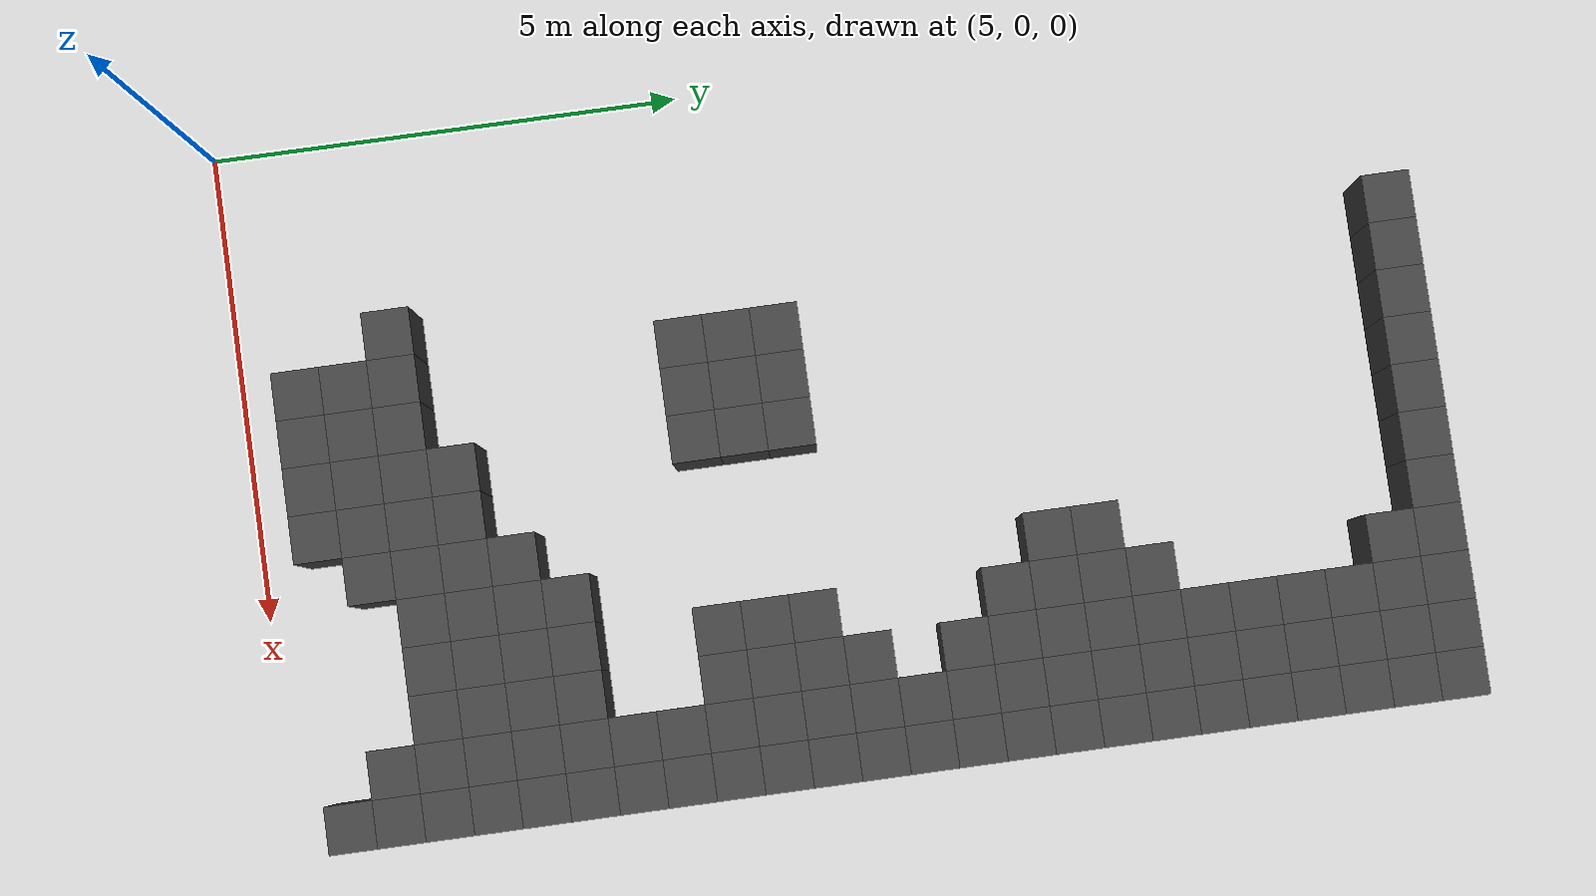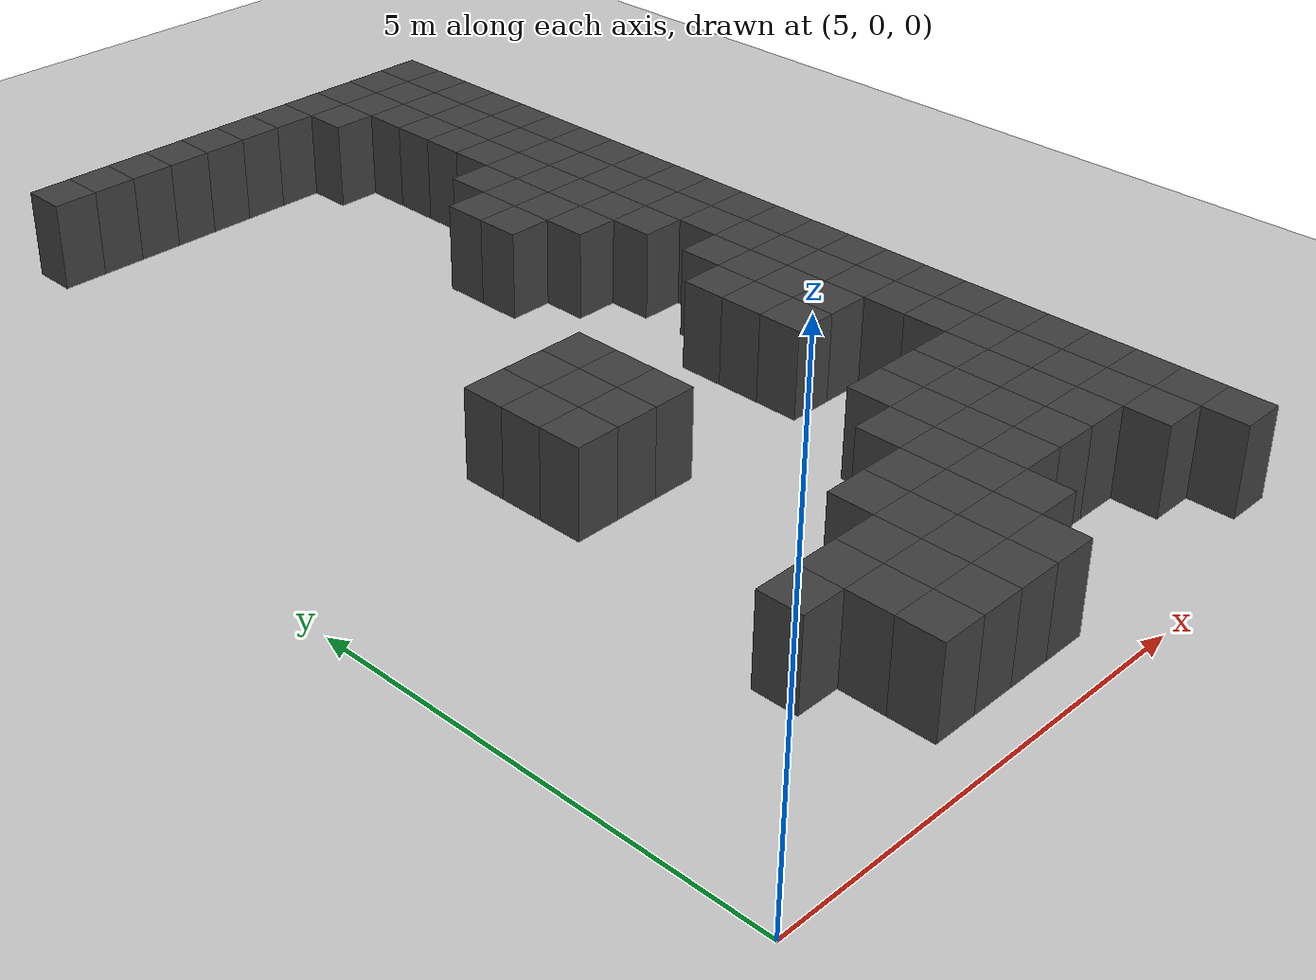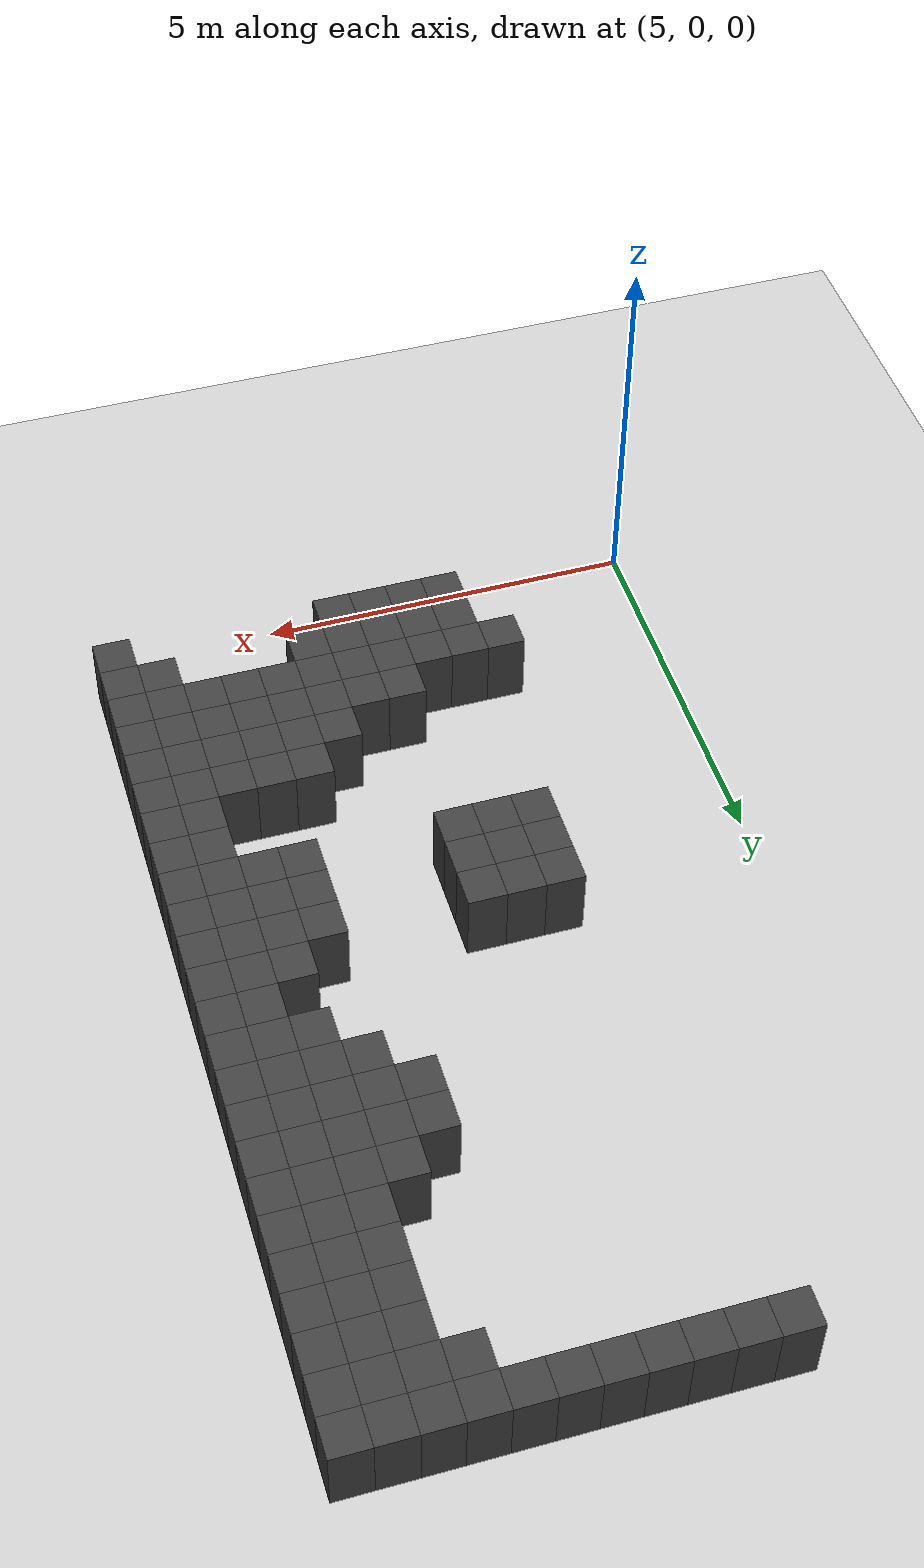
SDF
<sdf version="1.7">
 <world name="map_7372">
  <model name="ground_plane">
   <static>true</static>
   <link name="link">
    <collision name="collision">
     <geometry><plane><normal>0 0 1</normal><size>200 200</size></plane></geometry>
    </collision>
    <visual name="visual">
     <geometry><plane><normal>0 0 1</normal><size>200 200</size></plane></geometry>
     <material><ambient>0.8 0.8 0.8 1</ambient><diffuse>0.8 0.8 0.8 1</diffuse></material>
    </visual>
   </link>
  </model>
  <model name="maze_environment">
   <static>true</static>
   <link name="wall_39">
    <pose>7.250 12.250 0.500 0 0 0</pose>
    <collision name="col"><geometry><box><size>0.5 0.5 1.0</size></box></geometry></collision>
    <visual name="vis">
     <geometry><box><size>0.5 0.5 1.0</size></box></geometry>
     <material><ambient>0.15 0.15 0.15 1</ambient><diffuse>0.25 0.25 0.25 1</diffuse></material>
    </visual>
   </link>
   <link name="wall_40">
    <pose>7.750 12.250 0.500 0 0 0</pose>
    <collision name="col"><geometry><box><size>0.5 0.5 1.0</size></box></geometry></collision>
    <visual name="vis">
     <geometry><box><size>0.5 0.5 1.0</size></box></geometry>
     <material><ambient>0.15 0.15 0.15 1</ambient><diffuse>0.25 0.25 0.25 1</diffuse></material>
    </visual>
   </link>
   <link name="wall_41">
    <pose>8.250 12.250 0.500 0 0 0</pose>
    <collision name="col"><geometry><box><size>0.5 0.5 1.0</size></box></geometry></collision>
    <visual name="vis">
     <geometry><box><size>0.5 0.5 1.0</size></box></geometry>
     <material><ambient>0.15 0.15 0.15 1</ambient><diffuse>0.25 0.25 0.25 1</diffuse></material>
    </visual>
   </link>
   <link name="wall_42">
    <pose>8.750 12.250 0.500 0 0 0</pose>
    <collision name="col"><geometry><box><size>0.5 0.5 1.0</size></box></geometry></collision>
    <visual name="vis">
     <geometry><box><size>0.5 0.5 1.0</size></box></geometry>
     <material><ambient>0.15 0.15 0.15 1</ambient><diffuse>0.25 0.25 0.25 1</diffuse></material>
    </visual>
   </link>
   <link name="wall_43">
    <pose>9.250 12.250 0.500 0 0 0</pose>
    <collision name="col"><geometry><box><size>0.5 0.5 1.0</size></box></geometry></collision>
    <visual name="vis">
     <geometry><box><size>0.5 0.5 1.0</size></box></geometry>
     <material><ambient>0.15 0.15 0.15 1</ambient><diffuse>0.25 0.25 0.25 1</diffuse></material>
    </visual>
   </link>
   <link name="wall_44">
    <pose>9.750 12.250 0.500 0 0 0</pose>
    <collision name="col"><geometry><box><size>0.5 0.5 1.0</size></box></geometry></collision>
    <visual name="vis">
     <geometry><box><size>0.5 0.5 1.0</size></box></geometry>
     <material><ambient>0.15 0.15 0.15 1</ambient><diffuse>0.25 0.25 0.25 1</diffuse></material>
    </visual>
   </link>
   <link name="wall_45">
    <pose>10.250 12.250 0.500 0 0 0</pose>
    <collision name="col"><geometry><box><size>0.5 0.5 1.0</size></box></geometry></collision>
    <visual name="vis">
     <geometry><box><size>0.5 0.5 1.0</size></box></geometry>
     <material><ambient>0.15 0.15 0.15 1</ambient><diffuse>0.25 0.25 0.25 1</diffuse></material>
    </visual>
   </link>
   <link name="wall_46">
    <pose>10.750 12.250 0.500 0 0 0</pose>
    <collision name="col"><geometry><box><size>0.5 0.5 1.0</size></box></geometry></collision>
    <visual name="vis">
     <geometry><box><size>0.5 0.5 1.0</size></box></geometry>
     <material><ambient>0.15 0.15 0.15 1</ambient><diffuse>0.25 0.25 0.25 1</diffuse></material>
    </visual>
   </link>
   <link name="wall_47">
    <pose>11.250 12.250 0.500 0 0 0</pose>
    <collision name="col"><geometry><box><size>0.5 0.5 1.0</size></box></geometry></collision>
    <visual name="vis">
     <geometry><box><size>0.5 0.5 1.0</size></box></geometry>
     <material><ambient>0.15 0.15 0.15 1</ambient><diffuse>0.25 0.25 0.25 1</diffuse></material>
    </visual>
   </link>
   <link name="wall_48">
    <pose>11.750 12.250 0.500 0 0 0</pose>
    <collision name="col"><geometry><box><size>0.5 0.5 1.0</size></box></geometry></collision>
    <visual name="vis">
     <geometry><box><size>0.5 0.5 1.0</size></box></geometry>
     <material><ambient>0.15 0.15 0.15 1</ambient><diffuse>0.25 0.25 0.25 1</diffuse></material>
    </visual>
   </link>
   <link name="wall_49">
    <pose>12.250 12.250 0.500 0 0 0</pose>
    <collision name="col"><geometry><box><size>0.5 0.5 1.0</size></box></geometry></collision>
    <visual name="vis">
     <geometry><box><size>0.5 0.5 1.0</size></box></geometry>
     <material><ambient>0.15 0.15 0.15 1</ambient><diffuse>0.25 0.25 0.25 1</diffuse></material>
    </visual>
   </link>
   <link name="wall_77">
    <pose>10.750 11.750 0.500 0 0 0</pose>
    <collision name="col"><geometry><box><size>0.5 0.5 1.0</size></box></geometry></collision>
    <visual name="vis">
     <geometry><box><size>0.5 0.5 1.0</size></box></geometry>
     <material><ambient>0.15 0.15 0.15 1</ambient><diffuse>0.25 0.25 0.25 1</diffuse></material>
    </visual>
   </link>
   <link name="wall_78">
    <pose>11.250 11.750 0.500 0 0 0</pose>
    <collision name="col"><geometry><box><size>0.5 0.5 1.0</size></box></geometry></collision>
    <visual name="vis">
     <geometry><box><size>0.5 0.5 1.0</size></box></geometry>
     <material><ambient>0.15 0.15 0.15 1</ambient><diffuse>0.25 0.25 0.25 1</diffuse></material>
    </visual>
   </link>
   <link name="wall_79">
    <pose>11.750 11.750 0.500 0 0 0</pose>
    <collision name="col"><geometry><box><size>0.5 0.5 1.0</size></box></geometry></collision>
    <visual name="vis">
     <geometry><box><size>0.5 0.5 1.0</size></box></geometry>
     <material><ambient>0.15 0.15 0.15 1</ambient><diffuse>0.25 0.25 0.25 1</diffuse></material>
    </visual>
   </link>
   <link name="wall_80">
    <pose>12.250 11.750 0.500 0 0 0</pose>
    <collision name="col"><geometry><box><size>0.5 0.5 1.0</size></box></geometry></collision>
    <visual name="vis">
     <geometry><box><size>0.5 0.5 1.0</size></box></geometry>
     <material><ambient>0.15 0.15 0.15 1</ambient><diffuse>0.25 0.25 0.25 1</diffuse></material>
    </visual>
   </link>
   <link name="wall_98">
    <pose>11.250 11.250 0.500 0 0 0</pose>
    <collision name="col"><geometry><box><size>0.5 0.5 1.0</size></box></geometry></collision>
    <visual name="vis">
     <geometry><box><size>0.5 0.5 1.0</size></box></geometry>
     <material><ambient>0.15 0.15 0.15 1</ambient><diffuse>0.25 0.25 0.25 1</diffuse></material>
    </visual>
   </link>
   <link name="wall_99">
    <pose>11.750 11.250 0.500 0 0 0</pose>
    <collision name="col"><geometry><box><size>0.5 0.5 1.0</size></box></geometry></collision>
    <visual name="vis">
     <geometry><box><size>0.5 0.5 1.0</size></box></geometry>
     <material><ambient>0.15 0.15 0.15 1</ambient><diffuse>0.25 0.25 0.25 1</diffuse></material>
    </visual>
   </link>
   <link name="wall_100">
    <pose>12.250 11.250 0.500 0 0 0</pose>
    <collision name="col"><geometry><box><size>0.5 0.5 1.0</size></box></geometry></collision>
    <visual name="vis">
     <geometry><box><size>0.5 0.5 1.0</size></box></geometry>
     <material><ambient>0.15 0.15 0.15 1</ambient><diffuse>0.25 0.25 0.25 1</diffuse></material>
    </visual>
   </link>
   <link name="wall_110">
    <pose>11.250 10.750 0.500 0 0 0</pose>
    <collision name="col"><geometry><box><size>0.5 0.5 1.0</size></box></geometry></collision>
    <visual name="vis">
     <geometry><box><size>0.5 0.5 1.0</size></box></geometry>
     <material><ambient>0.15 0.15 0.15 1</ambient><diffuse>0.25 0.25 0.25 1</diffuse></material>
    </visual>
   </link>
   <link name="wall_111">
    <pose>11.750 10.750 0.500 0 0 0</pose>
    <collision name="col"><geometry><box><size>0.5 0.5 1.0</size></box></geometry></collision>
    <visual name="vis">
     <geometry><box><size>0.5 0.5 1.0</size></box></geometry>
     <material><ambient>0.15 0.15 0.15 1</ambient><diffuse>0.25 0.25 0.25 1</diffuse></material>
    </visual>
   </link>
   <link name="wall_112">
    <pose>12.250 10.750 0.500 0 0 0</pose>
    <collision name="col"><geometry><box><size>0.5 0.5 1.0</size></box></geometry></collision>
    <visual name="vis">
     <geometry><box><size>0.5 0.5 1.0</size></box></geometry>
     <material><ambient>0.15 0.15 0.15 1</ambient><diffuse>0.25 0.25 0.25 1</diffuse></material>
    </visual>
   </link>
   <link name="wall_120">
    <pose>11.250 10.250 0.500 0 0 0</pose>
    <collision name="col"><geometry><box><size>0.5 0.5 1.0</size></box></geometry></collision>
    <visual name="vis">
     <geometry><box><size>0.5 0.5 1.0</size></box></geometry>
     <material><ambient>0.15 0.15 0.15 1</ambient><diffuse>0.25 0.25 0.25 1</diffuse></material>
    </visual>
   </link>
   <link name="wall_121">
    <pose>11.750 10.250 0.500 0 0 0</pose>
    <collision name="col"><geometry><box><size>0.5 0.5 1.0</size></box></geometry></collision>
    <visual name="vis">
     <geometry><box><size>0.5 0.5 1.0</size></box></geometry>
     <material><ambient>0.15 0.15 0.15 1</ambient><diffuse>0.25 0.25 0.25 1</diffuse></material>
    </visual>
   </link>
   <link name="wall_122">
    <pose>12.250 10.250 0.500 0 0 0</pose>
    <collision name="col"><geometry><box><size>0.5 0.5 1.0</size></box></geometry></collision>
    <visual name="vis">
     <geometry><box><size>0.5 0.5 1.0</size></box></geometry>
     <material><ambient>0.15 0.15 0.15 1</ambient><diffuse>0.25 0.25 0.25 1</diffuse></material>
    </visual>
   </link>
   <link name="wall_134">
    <pose>11.250 9.750 0.500 0 0 0</pose>
    <collision name="col"><geometry><box><size>0.5 0.5 1.0</size></box></geometry></collision>
    <visual name="vis">
     <geometry><box><size>0.5 0.5 1.0</size></box></geometry>
     <material><ambient>0.15 0.15 0.15 1</ambient><diffuse>0.25 0.25 0.25 1</diffuse></material>
    </visual>
   </link>
   <link name="wall_135">
    <pose>11.750 9.750 0.500 0 0 0</pose>
    <collision name="col"><geometry><box><size>0.5 0.5 1.0</size></box></geometry></collision>
    <visual name="vis">
     <geometry><box><size>0.5 0.5 1.0</size></box></geometry>
     <material><ambient>0.15 0.15 0.15 1</ambient><diffuse>0.25 0.25 0.25 1</diffuse></material>
    </visual>
   </link>
   <link name="wall_136">
    <pose>12.250 9.750 0.500 0 0 0</pose>
    <collision name="col"><geometry><box><size>0.5 0.5 1.0</size></box></geometry></collision>
    <visual name="vis">
     <geometry><box><size>0.5 0.5 1.0</size></box></geometry>
     <material><ambient>0.15 0.15 0.15 1</ambient><diffuse>0.25 0.25 0.25 1</diffuse></material>
    </visual>
   </link>
   <link name="wall_146">
    <pose>10.750 9.250 0.500 0 0 0</pose>
    <collision name="col"><geometry><box><size>0.5 0.5 1.0</size></box></geometry></collision>
    <visual name="vis">
     <geometry><box><size>0.5 0.5 1.0</size></box></geometry>
     <material><ambient>0.15 0.15 0.15 1</ambient><diffuse>0.25 0.25 0.25 1</diffuse></material>
    </visual>
   </link>
   <link name="wall_147">
    <pose>11.250 9.250 0.500 0 0 0</pose>
    <collision name="col"><geometry><box><size>0.5 0.5 1.0</size></box></geometry></collision>
    <visual name="vis">
     <geometry><box><size>0.5 0.5 1.0</size></box></geometry>
     <material><ambient>0.15 0.15 0.15 1</ambient><diffuse>0.25 0.25 0.25 1</diffuse></material>
    </visual>
   </link>
   <link name="wall_148">
    <pose>11.750 9.250 0.500 0 0 0</pose>
    <collision name="col"><geometry><box><size>0.5 0.5 1.0</size></box></geometry></collision>
    <visual name="vis">
     <geometry><box><size>0.5 0.5 1.0</size></box></geometry>
     <material><ambient>0.15 0.15 0.15 1</ambient><diffuse>0.25 0.25 0.25 1</diffuse></material>
    </visual>
   </link>
   <link name="wall_149">
    <pose>12.250 9.250 0.500 0 0 0</pose>
    <collision name="col"><geometry><box><size>0.5 0.5 1.0</size></box></geometry></collision>
    <visual name="vis">
     <geometry><box><size>0.5 0.5 1.0</size></box></geometry>
     <material><ambient>0.15 0.15 0.15 1</ambient><diffuse>0.25 0.25 0.25 1</diffuse></material>
    </visual>
   </link>
   <link name="wall_157">
    <pose>10.250 8.750 0.500 0 0 0</pose>
    <collision name="col"><geometry><box><size>0.5 0.5 1.0</size></box></geometry></collision>
    <visual name="vis">
     <geometry><box><size>0.5 0.5 1.0</size></box></geometry>
     <material><ambient>0.15 0.15 0.15 1</ambient><diffuse>0.25 0.25 0.25 1</diffuse></material>
    </visual>
   </link>
   <link name="wall_158">
    <pose>10.750 8.750 0.500 0 0 0</pose>
    <collision name="col"><geometry><box><size>0.5 0.5 1.0</size></box></geometry></collision>
    <visual name="vis">
     <geometry><box><size>0.5 0.5 1.0</size></box></geometry>
     <material><ambient>0.15 0.15 0.15 1</ambient><diffuse>0.25 0.25 0.25 1</diffuse></material>
    </visual>
   </link>
   <link name="wall_159">
    <pose>11.250 8.750 0.500 0 0 0</pose>
    <collision name="col"><geometry><box><size>0.5 0.5 1.0</size></box></geometry></collision>
    <visual name="vis">
     <geometry><box><size>0.5 0.5 1.0</size></box></geometry>
     <material><ambient>0.15 0.15 0.15 1</ambient><diffuse>0.25 0.25 0.25 1</diffuse></material>
    </visual>
   </link>
   <link name="wall_160">
    <pose>11.750 8.750 0.500 0 0 0</pose>
    <collision name="col"><geometry><box><size>0.5 0.5 1.0</size></box></geometry></collision>
    <visual name="vis">
     <geometry><box><size>0.5 0.5 1.0</size></box></geometry>
     <material><ambient>0.15 0.15 0.15 1</ambient><diffuse>0.25 0.25 0.25 1</diffuse></material>
    </visual>
   </link>
   <link name="wall_161">
    <pose>12.250 8.750 0.500 0 0 0</pose>
    <collision name="col"><geometry><box><size>0.5 0.5 1.0</size></box></geometry></collision>
    <visual name="vis">
     <geometry><box><size>0.5 0.5 1.0</size></box></geometry>
     <material><ambient>0.15 0.15 0.15 1</ambient><diffuse>0.25 0.25 0.25 1</diffuse></material>
    </visual>
   </link>
   <link name="wall_167">
    <pose>10.250 8.250 0.500 0 0 0</pose>
    <collision name="col"><geometry><box><size>0.5 0.5 1.0</size></box></geometry></collision>
    <visual name="vis">
     <geometry><box><size>0.5 0.5 1.0</size></box></geometry>
     <material><ambient>0.15 0.15 0.15 1</ambient><diffuse>0.25 0.25 0.25 1</diffuse></material>
    </visual>
   </link>
   <link name="wall_168">
    <pose>10.750 8.250 0.500 0 0 0</pose>
    <collision name="col"><geometry><box><size>0.5 0.5 1.0</size></box></geometry></collision>
    <visual name="vis">
     <geometry><box><size>0.5 0.5 1.0</size></box></geometry>
     <material><ambient>0.15 0.15 0.15 1</ambient><diffuse>0.25 0.25 0.25 1</diffuse></material>
    </visual>
   </link>
   <link name="wall_169">
    <pose>11.250 8.250 0.500 0 0 0</pose>
    <collision name="col"><geometry><box><size>0.5 0.5 1.0</size></box></geometry></collision>
    <visual name="vis">
     <geometry><box><size>0.5 0.5 1.0</size></box></geometry>
     <material><ambient>0.15 0.15 0.15 1</ambient><diffuse>0.25 0.25 0.25 1</diffuse></material>
    </visual>
   </link>
   <link name="wall_170">
    <pose>11.750 8.250 0.500 0 0 0</pose>
    <collision name="col"><geometry><box><size>0.5 0.5 1.0</size></box></geometry></collision>
    <visual name="vis">
     <geometry><box><size>0.5 0.5 1.0</size></box></geometry>
     <material><ambient>0.15 0.15 0.15 1</ambient><diffuse>0.25 0.25 0.25 1</diffuse></material>
    </visual>
   </link>
   <link name="wall_171">
    <pose>12.250 8.250 0.500 0 0 0</pose>
    <collision name="col"><geometry><box><size>0.5 0.5 1.0</size></box></geometry></collision>
    <visual name="vis">
     <geometry><box><size>0.5 0.5 1.0</size></box></geometry>
     <material><ambient>0.15 0.15 0.15 1</ambient><diffuse>0.25 0.25 0.25 1</diffuse></material>
    </visual>
   </link>
   <link name="wall_179">
    <pose>10.750 7.750 0.500 0 0 0</pose>
    <collision name="col"><geometry><box><size>0.5 0.5 1.0</size></box></geometry></collision>
    <visual name="vis">
     <geometry><box><size>0.5 0.5 1.0</size></box></geometry>
     <material><ambient>0.15 0.15 0.15 1</ambient><diffuse>0.25 0.25 0.25 1</diffuse></material>
    </visual>
   </link>
   <link name="wall_180">
    <pose>11.250 7.750 0.500 0 0 0</pose>
    <collision name="col"><geometry><box><size>0.5 0.5 1.0</size></box></geometry></collision>
    <visual name="vis">
     <geometry><box><size>0.5 0.5 1.0</size></box></geometry>
     <material><ambient>0.15 0.15 0.15 1</ambient><diffuse>0.25 0.25 0.25 1</diffuse></material>
    </visual>
   </link>
   <link name="wall_181">
    <pose>11.750 7.750 0.500 0 0 0</pose>
    <collision name="col"><geometry><box><size>0.5 0.5 1.0</size></box></geometry></collision>
    <visual name="vis">
     <geometry><box><size>0.5 0.5 1.0</size></box></geometry>
     <material><ambient>0.15 0.15 0.15 1</ambient><diffuse>0.25 0.25 0.25 1</diffuse></material>
    </visual>
   </link>
   <link name="wall_182">
    <pose>12.250 7.750 0.500 0 0 0</pose>
    <collision name="col"><geometry><box><size>0.5 0.5 1.0</size></box></geometry></collision>
    <visual name="vis">
     <geometry><box><size>0.5 0.5 1.0</size></box></geometry>
     <material><ambient>0.15 0.15 0.15 1</ambient><diffuse>0.25 0.25 0.25 1</diffuse></material>
    </visual>
   </link>
   <link name="wall_191">
    <pose>11.250 7.250 0.500 0 0 0</pose>
    <collision name="col"><geometry><box><size>0.5 0.5 1.0</size></box></geometry></collision>
    <visual name="vis">
     <geometry><box><size>0.5 0.5 1.0</size></box></geometry>
     <material><ambient>0.15 0.15 0.15 1</ambient><diffuse>0.25 0.25 0.25 1</diffuse></material>
    </visual>
   </link>
   <link name="wall_192">
    <pose>11.750 7.250 0.500 0 0 0</pose>
    <collision name="col"><geometry><box><size>0.5 0.5 1.0</size></box></geometry></collision>
    <visual name="vis">
     <geometry><box><size>0.5 0.5 1.0</size></box></geometry>
     <material><ambient>0.15 0.15 0.15 1</ambient><diffuse>0.25 0.25 0.25 1</diffuse></material>
    </visual>
   </link>
   <link name="wall_193">
    <pose>12.250 7.250 0.500 0 0 0</pose>
    <collision name="col"><geometry><box><size>0.5 0.5 1.0</size></box></geometry></collision>
    <visual name="vis">
     <geometry><box><size>0.5 0.5 1.0</size></box></geometry>
     <material><ambient>0.15 0.15 0.15 1</ambient><diffuse>0.25 0.25 0.25 1</diffuse></material>
    </visual>
   </link>
   <link name="wall_200">
    <pose>11.750 6.750 0.500 0 0 0</pose>
    <collision name="col"><geometry><box><size>0.5 0.5 1.0</size></box></geometry></collision>
    <visual name="vis">
     <geometry><box><size>0.5 0.5 1.0</size></box></geometry>
     <material><ambient>0.15 0.15 0.15 1</ambient><diffuse>0.25 0.25 0.25 1</diffuse></material>
    </visual>
   </link>
   <link name="wall_201">
    <pose>12.250 6.750 0.500 0 0 0</pose>
    <collision name="col"><geometry><box><size>0.5 0.5 1.0</size></box></geometry></collision>
    <visual name="vis">
     <geometry><box><size>0.5 0.5 1.0</size></box></geometry>
     <material><ambient>0.15 0.15 0.15 1</ambient><diffuse>0.25 0.25 0.25 1</diffuse></material>
    </visual>
   </link>
   <link name="wall_210">
    <pose>11.250 6.250 0.500 0 0 0</pose>
    <collision name="col"><geometry><box><size>0.5 0.5 1.0</size></box></geometry></collision>
    <visual name="vis">
     <geometry><box><size>0.5 0.5 1.0</size></box></geometry>
     <material><ambient>0.15 0.15 0.15 1</ambient><diffuse>0.25 0.25 0.25 1</diffuse></material>
    </visual>
   </link>
   <link name="wall_211">
    <pose>11.750 6.250 0.500 0 0 0</pose>
    <collision name="col"><geometry><box><size>0.5 0.5 1.0</size></box></geometry></collision>
    <visual name="vis">
     <geometry><box><size>0.5 0.5 1.0</size></box></geometry>
     <material><ambient>0.15 0.15 0.15 1</ambient><diffuse>0.25 0.25 0.25 1</diffuse></material>
    </visual>
   </link>
   <link name="wall_212">
    <pose>12.250 6.250 0.500 0 0 0</pose>
    <collision name="col"><geometry><box><size>0.5 0.5 1.0</size></box></geometry></collision>
    <visual name="vis">
     <geometry><box><size>0.5 0.5 1.0</size></box></geometry>
     <material><ambient>0.15 0.15 0.15 1</ambient><diffuse>0.25 0.25 0.25 1</diffuse></material>
    </visual>
   </link>
   <link name="wall_223">
    <pose>7.750 5.750 0.500 0 0 0</pose>
    <collision name="col"><geometry><box><size>0.5 0.5 1.0</size></box></geometry></collision>
    <visual name="vis">
     <geometry><box><size>0.5 0.5 1.0</size></box></geometry>
     <material><ambient>0.15 0.15 0.15 1</ambient><diffuse>0.25 0.25 0.25 1</diffuse></material>
    </visual>
   </link>
   <link name="wall_224">
    <pose>8.250 5.750 0.500 0 0 0</pose>
    <collision name="col"><geometry><box><size>0.5 0.5 1.0</size></box></geometry></collision>
    <visual name="vis">
     <geometry><box><size>0.5 0.5 1.0</size></box></geometry>
     <material><ambient>0.15 0.15 0.15 1</ambient><diffuse>0.25 0.25 0.25 1</diffuse></material>
    </visual>
   </link>
   <link name="wall_225">
    <pose>8.750 5.750 0.500 0 0 0</pose>
    <collision name="col"><geometry><box><size>0.5 0.5 1.0</size></box></geometry></collision>
    <visual name="vis">
     <geometry><box><size>0.5 0.5 1.0</size></box></geometry>
     <material><ambient>0.15 0.15 0.15 1</ambient><diffuse>0.25 0.25 0.25 1</diffuse></material>
    </visual>
   </link>
   <link name="wall_226">
    <pose>10.750 5.750 0.500 0 0 0</pose>
    <collision name="col"><geometry><box><size>0.5 0.5 1.0</size></box></geometry></collision>
    <visual name="vis">
     <geometry><box><size>0.5 0.5 1.0</size></box></geometry>
     <material><ambient>0.15 0.15 0.15 1</ambient><diffuse>0.25 0.25 0.25 1</diffuse></material>
    </visual>
   </link>
   <link name="wall_227">
    <pose>11.250 5.750 0.500 0 0 0</pose>
    <collision name="col"><geometry><box><size>0.5 0.5 1.0</size></box></geometry></collision>
    <visual name="vis">
     <geometry><box><size>0.5 0.5 1.0</size></box></geometry>
     <material><ambient>0.15 0.15 0.15 1</ambient><diffuse>0.25 0.25 0.25 1</diffuse></material>
    </visual>
   </link>
   <link name="wall_228">
    <pose>11.750 5.750 0.500 0 0 0</pose>
    <collision name="col"><geometry><box><size>0.5 0.5 1.0</size></box></geometry></collision>
    <visual name="vis">
     <geometry><box><size>0.5 0.5 1.0</size></box></geometry>
     <material><ambient>0.15 0.15 0.15 1</ambient><diffuse>0.25 0.25 0.25 1</diffuse></material>
    </visual>
   </link>
   <link name="wall_229">
    <pose>12.250 5.750 0.500 0 0 0</pose>
    <collision name="col"><geometry><box><size>0.5 0.5 1.0</size></box></geometry></collision>
    <visual name="vis">
     <geometry><box><size>0.5 0.5 1.0</size></box></geometry>
     <material><ambient>0.15 0.15 0.15 1</ambient><diffuse>0.25 0.25 0.25 1</diffuse></material>
    </visual>
   </link>
   <link name="wall_244">
    <pose>7.750 5.250 0.500 0 0 0</pose>
    <collision name="col"><geometry><box><size>0.5 0.5 1.0</size></box></geometry></collision>
    <visual name="vis">
     <geometry><box><size>0.5 0.5 1.0</size></box></geometry>
     <material><ambient>0.15 0.15 0.15 1</ambient><diffuse>0.25 0.25 0.25 1</diffuse></material>
    </visual>
   </link>
   <link name="wall_245">
    <pose>8.250 5.250 0.500 0 0 0</pose>
    <collision name="col"><geometry><box><size>0.5 0.5 1.0</size></box></geometry></collision>
    <visual name="vis">
     <geometry><box><size>0.5 0.5 1.0</size></box></geometry>
     <material><ambient>0.15 0.15 0.15 1</ambient><diffuse>0.25 0.25 0.25 1</diffuse></material>
    </visual>
   </link>
   <link name="wall_246">
    <pose>8.750 5.250 0.500 0 0 0</pose>
    <collision name="col"><geometry><box><size>0.5 0.5 1.0</size></box></geometry></collision>
    <visual name="vis">
     <geometry><box><size>0.5 0.5 1.0</size></box></geometry>
     <material><ambient>0.15 0.15 0.15 1</ambient><diffuse>0.25 0.25 0.25 1</diffuse></material>
    </visual>
   </link>
   <link name="wall_247">
    <pose>10.750 5.250 0.500 0 0 0</pose>
    <collision name="col"><geometry><box><size>0.5 0.5 1.0</size></box></geometry></collision>
    <visual name="vis">
     <geometry><box><size>0.5 0.5 1.0</size></box></geometry>
     <material><ambient>0.15 0.15 0.15 1</ambient><diffuse>0.25 0.25 0.25 1</diffuse></material>
    </visual>
   </link>
   <link name="wall_248">
    <pose>11.250 5.250 0.500 0 0 0</pose>
    <collision name="col"><geometry><box><size>0.5 0.5 1.0</size></box></geometry></collision>
    <visual name="vis">
     <geometry><box><size>0.5 0.5 1.0</size></box></geometry>
     <material><ambient>0.15 0.15 0.15 1</ambient><diffuse>0.25 0.25 0.25 1</diffuse></material>
    </visual>
   </link>
   <link name="wall_249">
    <pose>11.750 5.250 0.500 0 0 0</pose>
    <collision name="col"><geometry><box><size>0.5 0.5 1.0</size></box></geometry></collision>
    <visual name="vis">
     <geometry><box><size>0.5 0.5 1.0</size></box></geometry>
     <material><ambient>0.15 0.15 0.15 1</ambient><diffuse>0.25 0.25 0.25 1</diffuse></material>
    </visual>
   </link>
   <link name="wall_250">
    <pose>12.250 5.250 0.500 0 0 0</pose>
    <collision name="col"><geometry><box><size>0.5 0.5 1.0</size></box></geometry></collision>
    <visual name="vis">
     <geometry><box><size>0.5 0.5 1.0</size></box></geometry>
     <material><ambient>0.15 0.15 0.15 1</ambient><diffuse>0.25 0.25 0.25 1</diffuse></material>
    </visual>
   </link>
   <link name="wall_265">
    <pose>7.750 4.750 0.500 0 0 0</pose>
    <collision name="col"><geometry><box><size>0.5 0.5 1.0</size></box></geometry></collision>
    <visual name="vis">
     <geometry><box><size>0.5 0.5 1.0</size></box></geometry>
     <material><ambient>0.15 0.15 0.15 1</ambient><diffuse>0.25 0.25 0.25 1</diffuse></material>
    </visual>
   </link>
   <link name="wall_266">
    <pose>8.250 4.750 0.500 0 0 0</pose>
    <collision name="col"><geometry><box><size>0.5 0.5 1.0</size></box></geometry></collision>
    <visual name="vis">
     <geometry><box><size>0.5 0.5 1.0</size></box></geometry>
     <material><ambient>0.15 0.15 0.15 1</ambient><diffuse>0.25 0.25 0.25 1</diffuse></material>
    </visual>
   </link>
   <link name="wall_267">
    <pose>8.750 4.750 0.500 0 0 0</pose>
    <collision name="col"><geometry><box><size>0.5 0.5 1.0</size></box></geometry></collision>
    <visual name="vis">
     <geometry><box><size>0.5 0.5 1.0</size></box></geometry>
     <material><ambient>0.15 0.15 0.15 1</ambient><diffuse>0.25 0.25 0.25 1</diffuse></material>
    </visual>
   </link>
   <link name="wall_268">
    <pose>10.750 4.750 0.500 0 0 0</pose>
    <collision name="col"><geometry><box><size>0.5 0.5 1.0</size></box></geometry></collision>
    <visual name="vis">
     <geometry><box><size>0.5 0.5 1.0</size></box></geometry>
     <material><ambient>0.15 0.15 0.15 1</ambient><diffuse>0.25 0.25 0.25 1</diffuse></material>
    </visual>
   </link>
   <link name="wall_269">
    <pose>11.250 4.750 0.500 0 0 0</pose>
    <collision name="col"><geometry><box><size>0.5 0.5 1.0</size></box></geometry></collision>
    <visual name="vis">
     <geometry><box><size>0.5 0.5 1.0</size></box></geometry>
     <material><ambient>0.15 0.15 0.15 1</ambient><diffuse>0.25 0.25 0.25 1</diffuse></material>
    </visual>
   </link>
   <link name="wall_270">
    <pose>11.750 4.750 0.500 0 0 0</pose>
    <collision name="col"><geometry><box><size>0.5 0.5 1.0</size></box></geometry></collision>
    <visual name="vis">
     <geometry><box><size>0.5 0.5 1.0</size></box></geometry>
     <material><ambient>0.15 0.15 0.15 1</ambient><diffuse>0.25 0.25 0.25 1</diffuse></material>
    </visual>
   </link>
   <link name="wall_271">
    <pose>12.250 4.750 0.500 0 0 0</pose>
    <collision name="col"><geometry><box><size>0.5 0.5 1.0</size></box></geometry></collision>
    <visual name="vis">
     <geometry><box><size>0.5 0.5 1.0</size></box></geometry>
     <material><ambient>0.15 0.15 0.15 1</ambient><diffuse>0.25 0.25 0.25 1</diffuse></material>
    </visual>
   </link>
   <link name="wall_288">
    <pose>11.750 4.250 0.500 0 0 0</pose>
    <collision name="col"><geometry><box><size>0.5 0.5 1.0</size></box></geometry></collision>
    <visual name="vis">
     <geometry><box><size>0.5 0.5 1.0</size></box></geometry>
     <material><ambient>0.15 0.15 0.15 1</ambient><diffuse>0.25 0.25 0.25 1</diffuse></material>
    </visual>
   </link>
   <link name="wall_289">
    <pose>12.250 4.250 0.500 0 0 0</pose>
    <collision name="col"><geometry><box><size>0.5 0.5 1.0</size></box></geometry></collision>
    <visual name="vis">
     <geometry><box><size>0.5 0.5 1.0</size></box></geometry>
     <material><ambient>0.15 0.15 0.15 1</ambient><diffuse>0.25 0.25 0.25 1</diffuse></material>
    </visual>
   </link>
   <link name="wall_302">
    <pose>11.750 3.750 0.500 0 0 0</pose>
    <collision name="col"><geometry><box><size>0.5 0.5 1.0</size></box></geometry></collision>
    <visual name="vis">
     <geometry><box><size>0.5 0.5 1.0</size></box></geometry>
     <material><ambient>0.15 0.15 0.15 1</ambient><diffuse>0.25 0.25 0.25 1</diffuse></material>
    </visual>
   </link>
   <link name="wall_303">
    <pose>12.250 3.750 0.500 0 0 0</pose>
    <collision name="col"><geometry><box><size>0.5 0.5 1.0</size></box></geometry></collision>
    <visual name="vis">
     <geometry><box><size>0.5 0.5 1.0</size></box></geometry>
     <material><ambient>0.15 0.15 0.15 1</ambient><diffuse>0.25 0.25 0.25 1</diffuse></material>
    </visual>
   </link>
   <link name="wall_314">
    <pose>10.250 3.250 0.500 0 0 0</pose>
    <collision name="col"><geometry><box><size>0.5 0.5 1.0</size></box></geometry></collision>
    <visual name="vis">
     <geometry><box><size>0.5 0.5 1.0</size></box></geometry>
     <material><ambient>0.15 0.15 0.15 1</ambient><diffuse>0.25 0.25 0.25 1</diffuse></material>
    </visual>
   </link>
   <link name="wall_315">
    <pose>10.750 3.250 0.500 0 0 0</pose>
    <collision name="col"><geometry><box><size>0.5 0.5 1.0</size></box></geometry></collision>
    <visual name="vis">
     <geometry><box><size>0.5 0.5 1.0</size></box></geometry>
     <material><ambient>0.15 0.15 0.15 1</ambient><diffuse>0.25 0.25 0.25 1</diffuse></material>
    </visual>
   </link>
   <link name="wall_316">
    <pose>11.250 3.250 0.500 0 0 0</pose>
    <collision name="col"><geometry><box><size>0.5 0.5 1.0</size></box></geometry></collision>
    <visual name="vis">
     <geometry><box><size>0.5 0.5 1.0</size></box></geometry>
     <material><ambient>0.15 0.15 0.15 1</ambient><diffuse>0.25 0.25 0.25 1</diffuse></material>
    </visual>
   </link>
   <link name="wall_317">
    <pose>11.750 3.250 0.500 0 0 0</pose>
    <collision name="col"><geometry><box><size>0.5 0.5 1.0</size></box></geometry></collision>
    <visual name="vis">
     <geometry><box><size>0.5 0.5 1.0</size></box></geometry>
     <material><ambient>0.15 0.15 0.15 1</ambient><diffuse>0.25 0.25 0.25 1</diffuse></material>
    </visual>
   </link>
   <link name="wall_318">
    <pose>12.250 3.250 0.500 0 0 0</pose>
    <collision name="col"><geometry><box><size>0.5 0.5 1.0</size></box></geometry></collision>
    <visual name="vis">
     <geometry><box><size>0.5 0.5 1.0</size></box></geometry>
     <material><ambient>0.15 0.15 0.15 1</ambient><diffuse>0.25 0.25 0.25 1</diffuse></material>
    </visual>
   </link>
   <link name="wall_328">
    <pose>9.750 2.750 0.500 0 0 0</pose>
    <collision name="col"><geometry><box><size>0.5 0.5 1.0</size></box></geometry></collision>
    <visual name="vis">
     <geometry><box><size>0.5 0.5 1.0</size></box></geometry>
     <material><ambient>0.15 0.15 0.15 1</ambient><diffuse>0.25 0.25 0.25 1</diffuse></material>
    </visual>
   </link>
   <link name="wall_329">
    <pose>10.250 2.750 0.500 0 0 0</pose>
    <collision name="col"><geometry><box><size>0.5 0.5 1.0</size></box></geometry></collision>
    <visual name="vis">
     <geometry><box><size>0.5 0.5 1.0</size></box></geometry>
     <material><ambient>0.15 0.15 0.15 1</ambient><diffuse>0.25 0.25 0.25 1</diffuse></material>
    </visual>
   </link>
   <link name="wall_330">
    <pose>10.750 2.750 0.500 0 0 0</pose>
    <collision name="col"><geometry><box><size>0.5 0.5 1.0</size></box></geometry></collision>
    <visual name="vis">
     <geometry><box><size>0.5 0.5 1.0</size></box></geometry>
     <material><ambient>0.15 0.15 0.15 1</ambient><diffuse>0.25 0.25 0.25 1</diffuse></material>
    </visual>
   </link>
   <link name="wall_331">
    <pose>11.250 2.750 0.500 0 0 0</pose>
    <collision name="col"><geometry><box><size>0.5 0.5 1.0</size></box></geometry></collision>
    <visual name="vis">
     <geometry><box><size>0.5 0.5 1.0</size></box></geometry>
     <material><ambient>0.15 0.15 0.15 1</ambient><diffuse>0.25 0.25 0.25 1</diffuse></material>
    </visual>
   </link>
   <link name="wall_332">
    <pose>11.750 2.750 0.500 0 0 0</pose>
    <collision name="col"><geometry><box><size>0.5 0.5 1.0</size></box></geometry></collision>
    <visual name="vis">
     <geometry><box><size>0.5 0.5 1.0</size></box></geometry>
     <material><ambient>0.15 0.15 0.15 1</ambient><diffuse>0.25 0.25 0.25 1</diffuse></material>
    </visual>
   </link>
   <link name="wall_333">
    <pose>12.250 2.750 0.500 0 0 0</pose>
    <collision name="col"><geometry><box><size>0.5 0.5 1.0</size></box></geometry></collision>
    <visual name="vis">
     <geometry><box><size>0.5 0.5 1.0</size></box></geometry>
     <material><ambient>0.15 0.15 0.15 1</ambient><diffuse>0.25 0.25 0.25 1</diffuse></material>
    </visual>
   </link>
   <link name="wall_344">
    <pose>8.750 2.250 0.500 0 0 0</pose>
    <collision name="col"><geometry><box><size>0.5 0.5 1.0</size></box></geometry></collision>
    <visual name="vis">
     <geometry><box><size>0.5 0.5 1.0</size></box></geometry>
     <material><ambient>0.15 0.15 0.15 1</ambient><diffuse>0.25 0.25 0.25 1</diffuse></material>
    </visual>
   </link>
   <link name="wall_345">
    <pose>9.250 2.250 0.500 0 0 0</pose>
    <collision name="col"><geometry><box><size>0.5 0.5 1.0</size></box></geometry></collision>
    <visual name="vis">
     <geometry><box><size>0.5 0.5 1.0</size></box></geometry>
     <material><ambient>0.15 0.15 0.15 1</ambient><diffuse>0.25 0.25 0.25 1</diffuse></material>
    </visual>
   </link>
   <link name="wall_346">
    <pose>9.750 2.250 0.500 0 0 0</pose>
    <collision name="col"><geometry><box><size>0.5 0.5 1.0</size></box></geometry></collision>
    <visual name="vis">
     <geometry><box><size>0.5 0.5 1.0</size></box></geometry>
     <material><ambient>0.15 0.15 0.15 1</ambient><diffuse>0.25 0.25 0.25 1</diffuse></material>
    </visual>
   </link>
   <link name="wall_347">
    <pose>10.250 2.250 0.500 0 0 0</pose>
    <collision name="col"><geometry><box><size>0.5 0.5 1.0</size></box></geometry></collision>
    <visual name="vis">
     <geometry><box><size>0.5 0.5 1.0</size></box></geometry>
     <material><ambient>0.15 0.15 0.15 1</ambient><diffuse>0.25 0.25 0.25 1</diffuse></material>
    </visual>
   </link>
   <link name="wall_348">
    <pose>10.750 2.250 0.500 0 0 0</pose>
    <collision name="col"><geometry><box><size>0.5 0.5 1.0</size></box></geometry></collision>
    <visual name="vis">
     <geometry><box><size>0.5 0.5 1.0</size></box></geometry>
     <material><ambient>0.15 0.15 0.15 1</ambient><diffuse>0.25 0.25 0.25 1</diffuse></material>
    </visual>
   </link>
   <link name="wall_349">
    <pose>11.250 2.250 0.500 0 0 0</pose>
    <collision name="col"><geometry><box><size>0.5 0.5 1.0</size></box></geometry></collision>
    <visual name="vis">
     <geometry><box><size>0.5 0.5 1.0</size></box></geometry>
     <material><ambient>0.15 0.15 0.15 1</ambient><diffuse>0.25 0.25 0.25 1</diffuse></material>
    </visual>
   </link>
   <link name="wall_350">
    <pose>11.750 2.250 0.500 0 0 0</pose>
    <collision name="col"><geometry><box><size>0.5 0.5 1.0</size></box></geometry></collision>
    <visual name="vis">
     <geometry><box><size>0.5 0.5 1.0</size></box></geometry>
     <material><ambient>0.15 0.15 0.15 1</ambient><diffuse>0.25 0.25 0.25 1</diffuse></material>
    </visual>
   </link>
   <link name="wall_351">
    <pose>12.250 2.250 0.500 0 0 0</pose>
    <collision name="col"><geometry><box><size>0.5 0.5 1.0</size></box></geometry></collision>
    <visual name="vis">
     <geometry><box><size>0.5 0.5 1.0</size></box></geometry>
     <material><ambient>0.15 0.15 0.15 1</ambient><diffuse>0.25 0.25 0.25 1</diffuse></material>
    </visual>
   </link>
   <link name="wall_362">
    <pose>7.250 1.750 0.500 0 0 0</pose>
    <collision name="col"><geometry><box><size>0.5 0.5 1.0</size></box></geometry></collision>
    <visual name="vis">
     <geometry><box><size>0.5 0.5 1.0</size></box></geometry>
     <material><ambient>0.15 0.15 0.15 1</ambient><diffuse>0.25 0.25 0.25 1</diffuse></material>
    </visual>
   </link>
   <link name="wall_363">
    <pose>7.750 1.750 0.500 0 0 0</pose>
    <collision name="col"><geometry><box><size>0.5 0.5 1.0</size></box></geometry></collision>
    <visual name="vis">
     <geometry><box><size>0.5 0.5 1.0</size></box></geometry>
     <material><ambient>0.15 0.15 0.15 1</ambient><diffuse>0.25 0.25 0.25 1</diffuse></material>
    </visual>
   </link>
   <link name="wall_364">
    <pose>8.250 1.750 0.500 0 0 0</pose>
    <collision name="col"><geometry><box><size>0.5 0.5 1.0</size></box></geometry></collision>
    <visual name="vis">
     <geometry><box><size>0.5 0.5 1.0</size></box></geometry>
     <material><ambient>0.15 0.15 0.15 1</ambient><diffuse>0.25 0.25 0.25 1</diffuse></material>
    </visual>
   </link>
   <link name="wall_365">
    <pose>8.750 1.750 0.500 0 0 0</pose>
    <collision name="col"><geometry><box><size>0.5 0.5 1.0</size></box></geometry></collision>
    <visual name="vis">
     <geometry><box><size>0.5 0.5 1.0</size></box></geometry>
     <material><ambient>0.15 0.15 0.15 1</ambient><diffuse>0.25 0.25 0.25 1</diffuse></material>
    </visual>
   </link>
   <link name="wall_366">
    <pose>9.250 1.750 0.500 0 0 0</pose>
    <collision name="col"><geometry><box><size>0.5 0.5 1.0</size></box></geometry></collision>
    <visual name="vis">
     <geometry><box><size>0.5 0.5 1.0</size></box></geometry>
     <material><ambient>0.15 0.15 0.15 1</ambient><diffuse>0.25 0.25 0.25 1</diffuse></material>
    </visual>
   </link>
   <link name="wall_367">
    <pose>9.750 1.750 0.500 0 0 0</pose>
    <collision name="col"><geometry><box><size>0.5 0.5 1.0</size></box></geometry></collision>
    <visual name="vis">
     <geometry><box><size>0.5 0.5 1.0</size></box></geometry>
     <material><ambient>0.15 0.15 0.15 1</ambient><diffuse>0.25 0.25 0.25 1</diffuse></material>
    </visual>
   </link>
   <link name="wall_368">
    <pose>10.250 1.750 0.500 0 0 0</pose>
    <collision name="col"><geometry><box><size>0.5 0.5 1.0</size></box></geometry></collision>
    <visual name="vis">
     <geometry><box><size>0.5 0.5 1.0</size></box></geometry>
     <material><ambient>0.15 0.15 0.15 1</ambient><diffuse>0.25 0.25 0.25 1</diffuse></material>
    </visual>
   </link>
   <link name="wall_369">
    <pose>10.750 1.750 0.500 0 0 0</pose>
    <collision name="col"><geometry><box><size>0.5 0.5 1.0</size></box></geometry></collision>
    <visual name="vis">
     <geometry><box><size>0.5 0.5 1.0</size></box></geometry>
     <material><ambient>0.15 0.15 0.15 1</ambient><diffuse>0.25 0.25 0.25 1</diffuse></material>
    </visual>
   </link>
   <link name="wall_370">
    <pose>11.250 1.750 0.500 0 0 0</pose>
    <collision name="col"><geometry><box><size>0.5 0.5 1.0</size></box></geometry></collision>
    <visual name="vis">
     <geometry><box><size>0.5 0.5 1.0</size></box></geometry>
     <material><ambient>0.15 0.15 0.15 1</ambient><diffuse>0.25 0.25 0.25 1</diffuse></material>
    </visual>
   </link>
   <link name="wall_371">
    <pose>11.750 1.750 0.500 0 0 0</pose>
    <collision name="col"><geometry><box><size>0.5 0.5 1.0</size></box></geometry></collision>
    <visual name="vis">
     <geometry><box><size>0.5 0.5 1.0</size></box></geometry>
     <material><ambient>0.15 0.15 0.15 1</ambient><diffuse>0.25 0.25 0.25 1</diffuse></material>
    </visual>
   </link>
   <link name="wall_372">
    <pose>12.250 1.750 0.500 0 0 0</pose>
    <collision name="col"><geometry><box><size>0.5 0.5 1.0</size></box></geometry></collision>
    <visual name="vis">
     <geometry><box><size>0.5 0.5 1.0</size></box></geometry>
     <material><ambient>0.15 0.15 0.15 1</ambient><diffuse>0.25 0.25 0.25 1</diffuse></material>
    </visual>
   </link>
   <link name="wall_383">
    <pose>7.750 1.250 0.500 0 0 0</pose>
    <collision name="col"><geometry><box><size>0.5 0.5 1.0</size></box></geometry></collision>
    <visual name="vis">
     <geometry><box><size>0.5 0.5 1.0</size></box></geometry>
     <material><ambient>0.15 0.15 0.15 1</ambient><diffuse>0.25 0.25 0.25 1</diffuse></material>
    </visual>
   </link>
   <link name="wall_384">
    <pose>8.250 1.250 0.500 0 0 0</pose>
    <collision name="col"><geometry><box><size>0.5 0.5 1.0</size></box></geometry></collision>
    <visual name="vis">
     <geometry><box><size>0.5 0.5 1.0</size></box></geometry>
     <material><ambient>0.15 0.15 0.15 1</ambient><diffuse>0.25 0.25 0.25 1</diffuse></material>
    </visual>
   </link>
   <link name="wall_385">
    <pose>8.750 1.250 0.500 0 0 0</pose>
    <collision name="col"><geometry><box><size>0.5 0.5 1.0</size></box></geometry></collision>
    <visual name="vis">
     <geometry><box><size>0.5 0.5 1.0</size></box></geometry>
     <material><ambient>0.15 0.15 0.15 1</ambient><diffuse>0.25 0.25 0.25 1</diffuse></material>
    </visual>
   </link>
   <link name="wall_386">
    <pose>9.250 1.250 0.500 0 0 0</pose>
    <collision name="col"><geometry><box><size>0.5 0.5 1.0</size></box></geometry></collision>
    <visual name="vis">
     <geometry><box><size>0.5 0.5 1.0</size></box></geometry>
     <material><ambient>0.15 0.15 0.15 1</ambient><diffuse>0.25 0.25 0.25 1</diffuse></material>
    </visual>
   </link>
   <link name="wall_387">
    <pose>9.750 1.250 0.500 0 0 0</pose>
    <collision name="col"><geometry><box><size>0.5 0.5 1.0</size></box></geometry></collision>
    <visual name="vis">
     <geometry><box><size>0.5 0.5 1.0</size></box></geometry>
     <material><ambient>0.15 0.15 0.15 1</ambient><diffuse>0.25 0.25 0.25 1</diffuse></material>
    </visual>
   </link>
   <link name="wall_388">
    <pose>11.750 1.250 0.500 0 0 0</pose>
    <collision name="col"><geometry><box><size>0.5 0.5 1.0</size></box></geometry></collision>
    <visual name="vis">
     <geometry><box><size>0.5 0.5 1.0</size></box></geometry>
     <material><ambient>0.15 0.15 0.15 1</ambient><diffuse>0.25 0.25 0.25 1</diffuse></material>
    </visual>
   </link>
   <link name="wall_389">
    <pose>12.250 1.250 0.500 0 0 0</pose>
    <collision name="col"><geometry><box><size>0.5 0.5 1.0</size></box></geometry></collision>
    <visual name="vis">
     <geometry><box><size>0.5 0.5 1.0</size></box></geometry>
     <material><ambient>0.15 0.15 0.15 1</ambient><diffuse>0.25 0.25 0.25 1</diffuse></material>
    </visual>
   </link>
   <link name="wall_400">
    <pose>7.750 0.750 0.500 0 0 0</pose>
    <collision name="col"><geometry><box><size>0.5 0.5 1.0</size></box></geometry></collision>
    <visual name="vis">
     <geometry><box><size>0.5 0.5 1.0</size></box></geometry>
     <material><ambient>0.15 0.15 0.15 1</ambient><diffuse>0.25 0.25 0.25 1</diffuse></material>
    </visual>
   </link>
   <link name="wall_401">
    <pose>8.250 0.750 0.500 0 0 0</pose>
    <collision name="col"><geometry><box><size>0.5 0.5 1.0</size></box></geometry></collision>
    <visual name="vis">
     <geometry><box><size>0.5 0.5 1.0</size></box></geometry>
     <material><ambient>0.15 0.15 0.15 1</ambient><diffuse>0.25 0.25 0.25 1</diffuse></material>
    </visual>
   </link>
   <link name="wall_402">
    <pose>8.750 0.750 0.500 0 0 0</pose>
    <collision name="col"><geometry><box><size>0.5 0.5 1.0</size></box></geometry></collision>
    <visual name="vis">
     <geometry><box><size>0.5 0.5 1.0</size></box></geometry>
     <material><ambient>0.15 0.15 0.15 1</ambient><diffuse>0.25 0.25 0.25 1</diffuse></material>
    </visual>
   </link>
   <link name="wall_403">
    <pose>9.250 0.750 0.500 0 0 0</pose>
    <collision name="col"><geometry><box><size>0.5 0.5 1.0</size></box></geometry></collision>
    <visual name="vis">
     <geometry><box><size>0.5 0.5 1.0</size></box></geometry>
     <material><ambient>0.15 0.15 0.15 1</ambient><diffuse>0.25 0.25 0.25 1</diffuse></material>
    </visual>
   </link>
   <link name="wall_404">
    <pose>12.250 0.750 0.500 0 0 0</pose>
    <collision name="col"><geometry><box><size>0.5 0.5 1.0</size></box></geometry></collision>
    <visual name="vis">
     <geometry><box><size>0.5 0.5 1.0</size></box></geometry>
     <material><ambient>0.15 0.15 0.15 1</ambient><diffuse>0.25 0.25 0.25 1</diffuse></material>
    </visual>
   </link>
  </model>
 </world>
</sdf>
